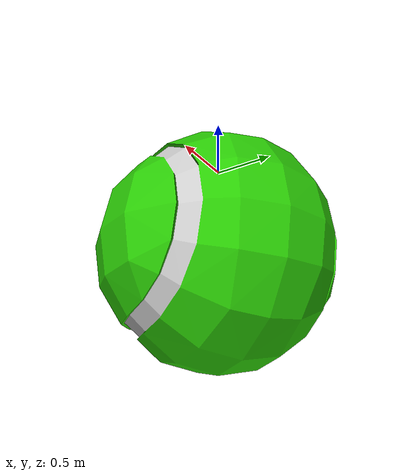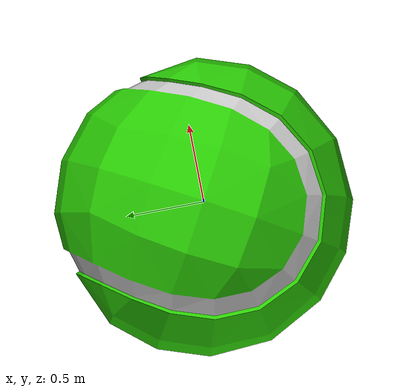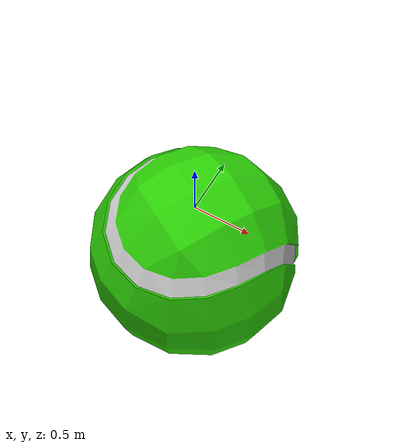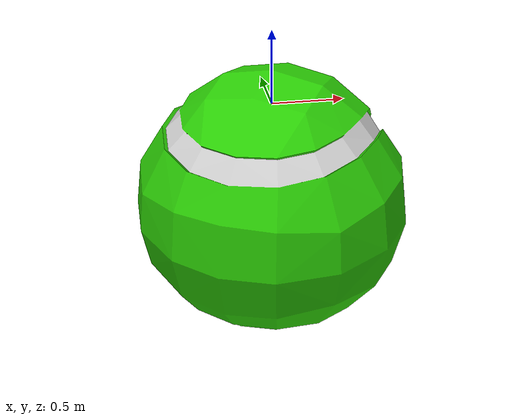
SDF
<?xml version='1.0' ?>
<sdf version='1.6'>
  <model name='TennisBall'>
    <static>true</static>
    <link name='link'>
      <pose>0 0 0 0 0 0</pose>
      <collision name='collision'>
        <geometry>
          <mesh>
            <uri>model://TennisBall/meshes/ball.dae</uri>
          </mesh>
        </geometry>
      </collision>
      <visual name='visual'>
        <geometry>
          <mesh>
            <uri>model://TennisBall/meshes/ball.dae</uri>
          </mesh>
        </geometry>
      </visual>
    </link>
  </model>
</sdf>
